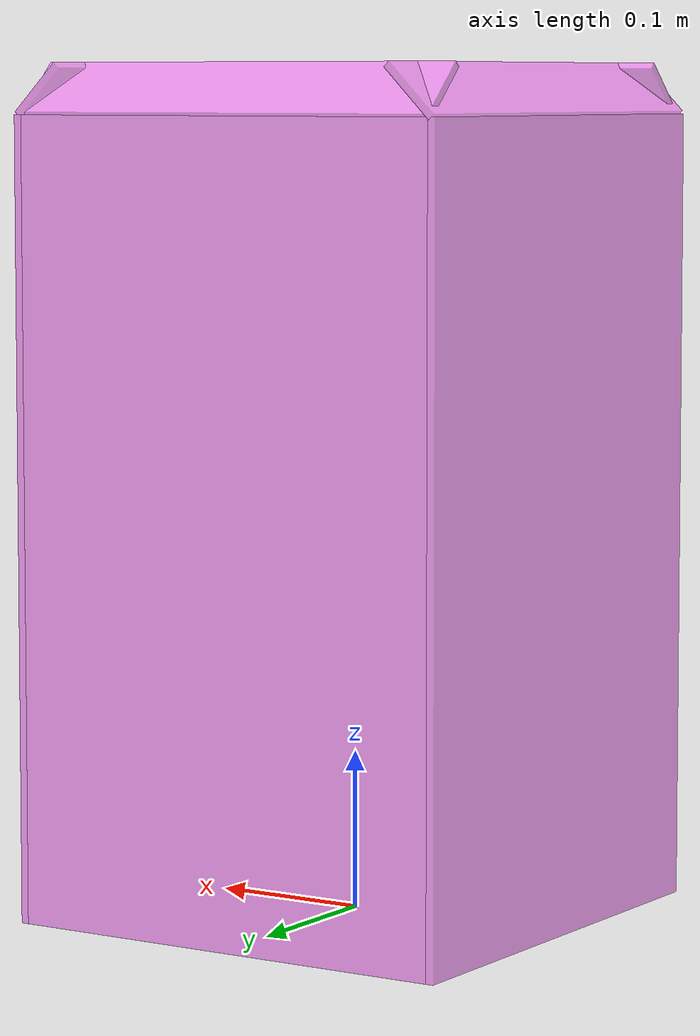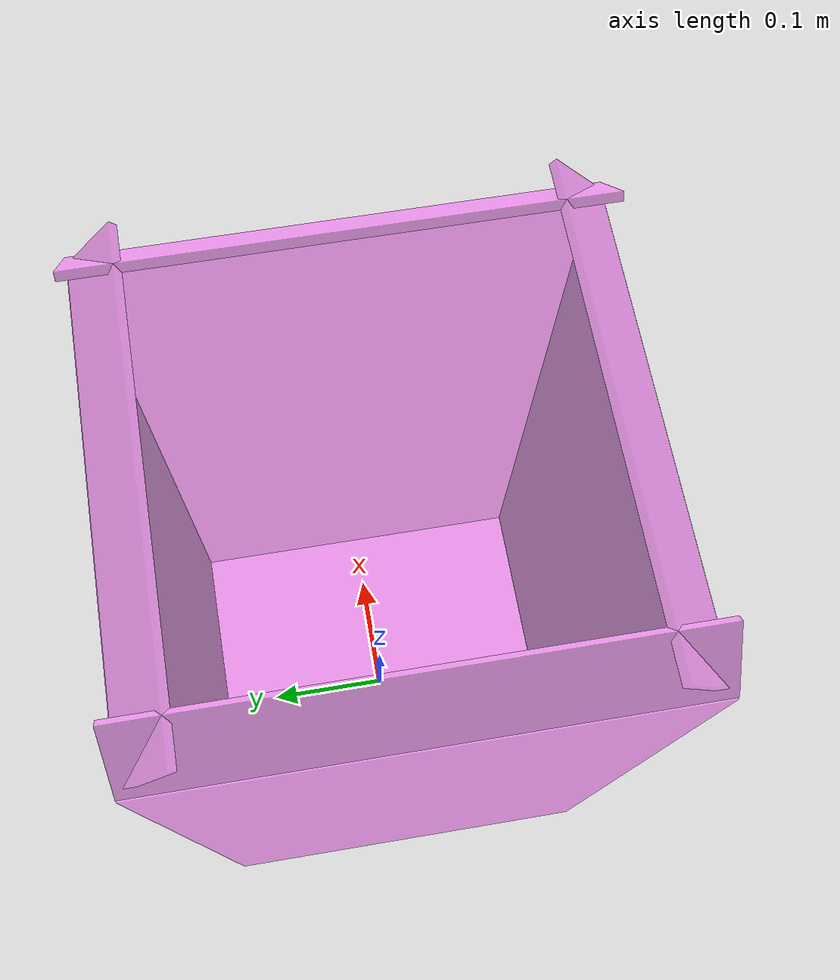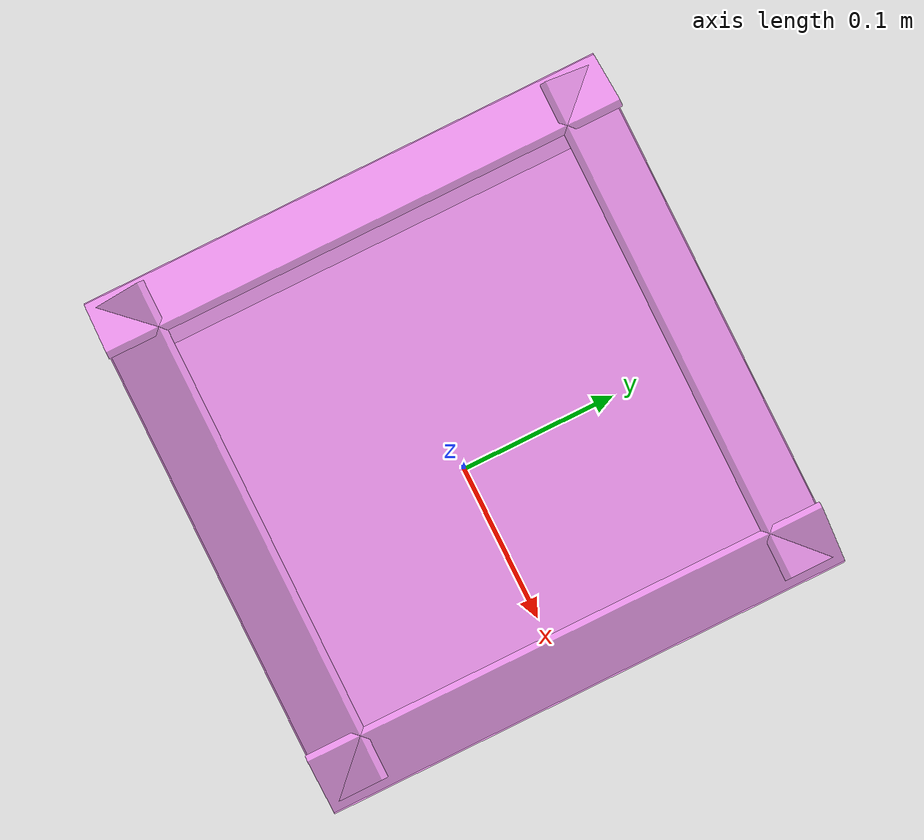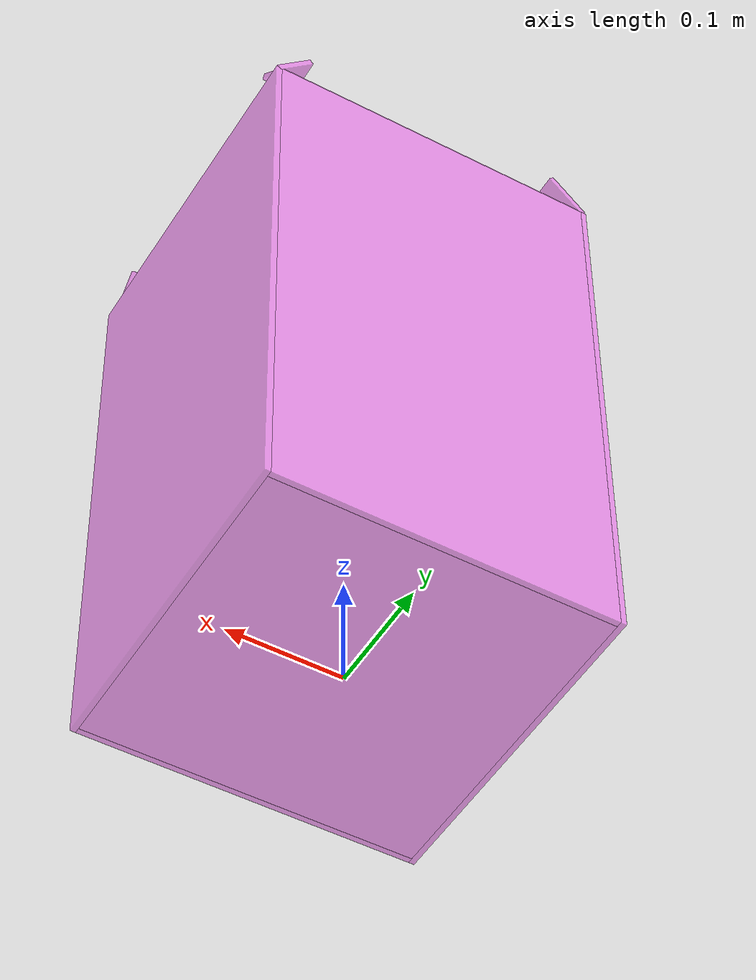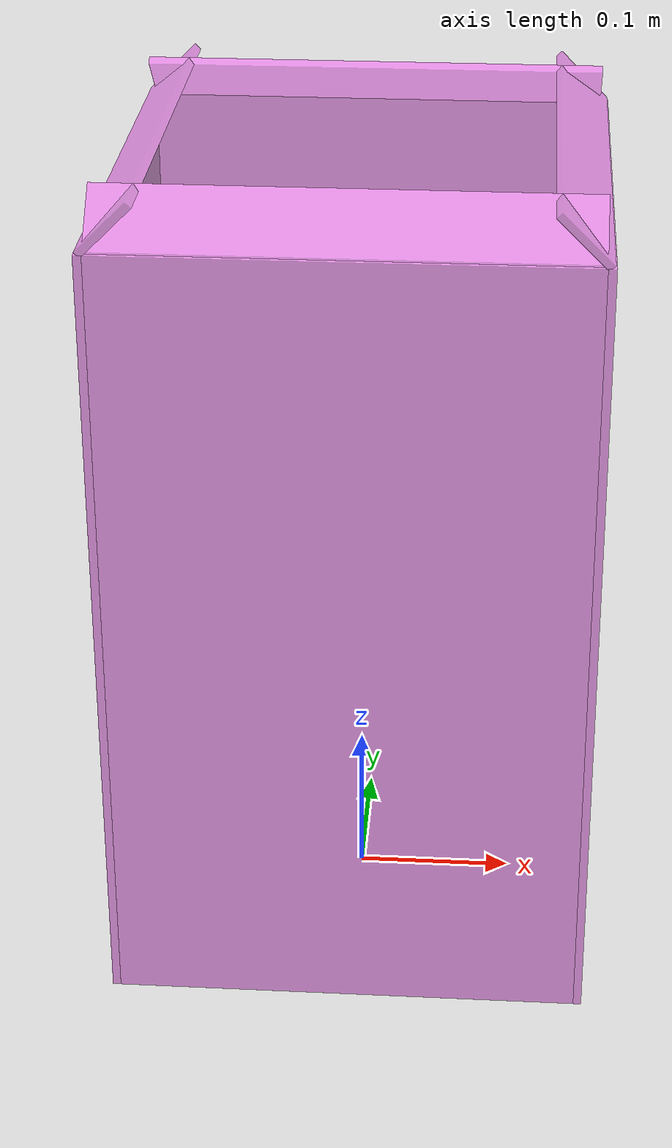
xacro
<?xml version="1.0" ?>
<!-- Source container of ode_grpour_sim -->
<robot name="container1" xmlns:xacro="http://www.ros.org/wiki/xacro">
  <xacro:arg name="Thickness"    default="0.005" />
  <!--Size parameters of the main body of the container:-->
  <xacro:arg name="SizeXY"       default="0.3" />
  <xacro:arg name="SizeZ"        default="0.5" />
  <!--Size parameters of the opening part:-->
  <xacro:arg name="Size2H"       default="0.03" />
  <xacro:arg name="OpnAngle"     default="0.7853981633974483" />

  <xacro:macro name="box_geom" params="xyz rpy size">
    <origin xyz="${xyz}" rpy="${rpy}"/>
    <geometry><box size="${size}"/></geometry>
  </xacro:macro>

  <xacro:macro name="add_box" params="xyz rpy size">
    <visual>
      <xacro:box_geom xyz="${xyz}" rpy="${rpy}" size="${size}"/>
      <material name="container_material"/>
    </visual>
    <collision>
      <xacro:box_geom xyz="${xyz}" rpy="${rpy}" size="${size}"/>
    </collision>
  </xacro:macro>

  <material name="container_material">
    <color rgba="1 0.5 1 0.7"/>
  </material>

  <link name="base_link">
    <contact>
      <rolling_friction value="0.1"/>
      <spinning_friction value="0.1"/>
    </contact>
    <inertial>
      <origin rpy="0 0 0" xyz="0 0 0"/>
      <mass value="0.2"/>
      <inertia ixx="1" ixy="0" ixz="0" iyy="1" iyz="0" izz="1"/>
    </inertial>

    <xacro:property name="sizexy" value="$(arg SizeXY)" />
    <xacro:property name="sizez"  value="$(arg SizeZ)" />
    <xacro:property name="size2s" value="$(arg SizeXY)" />
    <xacro:property name="size2h" value="$(arg Size2H)" />
    <xacro:property name="thickness" value="$(arg Thickness)" />
    <xacro:property name="opening_angle" value="$(arg OpnAngle)" />
    <xacro:property name="bottom_z" value="0.0" />
    <xacro:property name="M_SQRT2" value="${sqrt(2.0)}" />

    <!--Main body of the container:-->
    <xacro:add_box rpy="0 0 0" xyz="${0.0} ${0.0} ${0.5*thickness+bottom_z}"
                   size="${sizexy-2.0*thickness} ${sizexy-2.0*thickness} ${thickness}" />
    <xacro:add_box rpy="0 0 0" xyz="${0.5*sizexy-0.5*thickness} ${0.0} ${0.5*sizez+bottom_z}"
                   size="${thickness} ${sizexy} ${sizez}" />
    <xacro:add_box rpy="0 0 0" xyz="${-0.5*sizexy+0.5*thickness} ${0.0} ${0.5*sizez+bottom_z}"
                   size="${thickness} ${sizexy} ${sizez}" />
    <xacro:add_box rpy="0 0 0" xyz="${0.0} ${0.5*sizexy-0.5*thickness} ${0.5*sizez+bottom_z}"
                   size="${sizexy-2.0*thickness} ${thickness} ${sizez}" />
    <xacro:add_box rpy="0 0 0" xyz="${0.0} ${-0.5*sizexy+0.5*thickness} ${0.5*sizez+bottom_z}"
                   size="${sizexy-2.0*thickness} ${thickness} ${sizez}" />

    <!--Opening:-->
    <xacro:add_box rpy="0 ${-opening_angle} 0" xyz="${0.5*sizexy-0.5*size2h-0.5*thickness} ${0.0} ${0.5*size2h+sizez+bottom_z}"
                   size="${thickness} ${size2s} ${M_SQRT2*size2h}" />
    <xacro:add_box rpy="0 ${opening_angle} 0" xyz="${-0.5*sizexy+0.5*size2h+0.5*thickness} ${0.0} ${0.5*size2h+sizez+bottom_z}"
                   size="${thickness} ${size2s} ${M_SQRT2*size2h}" />
    <xacro:add_box rpy="${opening_angle} 0 0" xyz="${0.0} ${0.5*sizexy-0.5*size2h-0.5*thickness} ${0.5*size2h+sizez+bottom_z}"
                   size="${size2s-2.0*thickness} ${thickness} ${M_SQRT2*size2h}" />
    <xacro:add_box rpy="${-opening_angle} 0 0" xyz="${0.0} ${-0.5*sizexy+0.5*size2h+0.5*thickness} ${0.5*size2h+sizez+bottom_z}"
                   size="${size2s-2.0*thickness} ${thickness} ${M_SQRT2*size2h}" />

  </link>
</robot>
